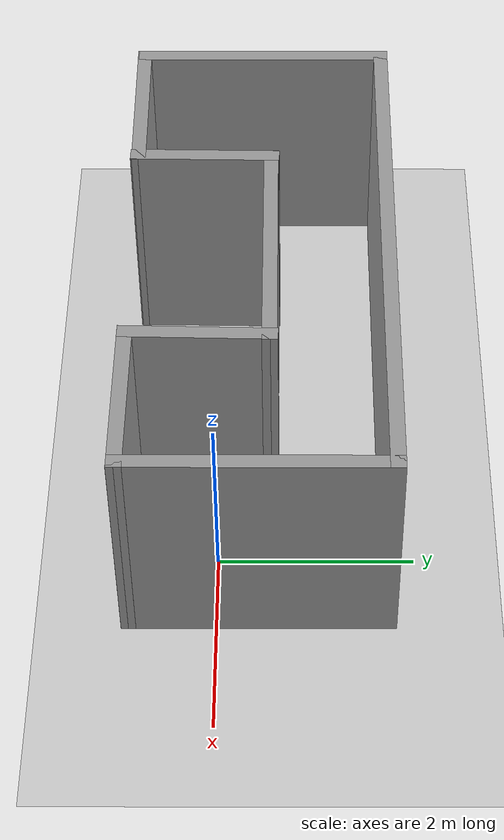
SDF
<sdf version="1.6">
 <world name="default">
  <light name="sun" type="directional">
   <pose>0 0 10 0 -0 0</pose>
   <diffuse>0.8 0.8 0.8 1</diffuse>
   <specular>0.2 0.2 0.2 1</specular>
   <attenuation>
    <range>1000</range>
    <constant>0.9</constant>
    <linear>0.01</linear>
    <quadratic>0.001</quadratic>
   </attenuation>
   <direction>-0.5 0.1 -0.9</direction>
  </light>
  <model name="ground_plane">
   <static>1</static>
   <link name="link">
    <collision name="collision">
     <geometry><plane><normal>0 0 1</normal><size>100 100</size></plane></geometry>
     <surface>
      <contact><collide_bitmask>65535</collide_bitmask></contact>
      <friction><ode><mu>100</mu><mu2>50</mu2></ode></friction>
     </surface>
    </collision>
    <visual name="visual">
     <cast_shadows>0</cast_shadows>
     <geometry><plane><normal>0 0 1</normal><size>100 100</size></plane></geometry>
     <material>
      <script><uri>file://media/materials/scripts/gazebo.material</uri><name>Gazebo/Grey</name></script>
     </material>
    </visual>
   </link>
  </model>
  <gravity>0 0 -9.8</gravity>
  <magnetic_field>6e-06 2.3e-05 -4.2e-05</magnetic_field>
  <atmosphere type="adiabatic"/>
  <physics name="default_physics" default="0" type="ode">
   <max_step_size>0.001</max_step_size>
   <real_time_factor>1</real_time_factor>
   <real_time_update_rate>1000</real_time_update_rate>
  </physics>
  <scene><ambient>0.4 0.4 0.4 1</ambient><background>0.7 0.7 0.7 1</background><shadows>1</shadows></scene>
  <audio><device>default</device></audio>
  <spherical_coordinates>
   <surface_model>EARTH_WGS84</surface_model>
   <latitude_deg>0</latitude_deg>
   <longitude_deg>0</longitude_deg>
   <elevation>0</elevation>
   <heading_deg>0</heading_deg>
  </spherical_coordinates>
  <model name="irex_sim1">
   <pose>-2.16054 0.424159 0 0 -0 0</pose>
   <link name="Wall_1">
    <collision name="Wall_1_Collision">
     <geometry><box><size>6 0.15 2.5</size></box></geometry>
     <pose>0 0 1.25 0 -0 0</pose>
    </collision>
    <visual name="Wall_1_Visual">
     <pose>0 0 1.25 0 -0 0</pose>
     <geometry><box><size>6 0.15 2.5</size></box></geometry>
     <material>
      <script><uri>file://media/materials/scripts/gazebo.material</uri><name>Gazebo/Grey</name></script>
      <ambient>1 1 1 1</ambient>
     </material>
     <meta><layer>0</layer></meta>
    </visual>
    <pose>2.1e-05 1.30023 0 0 -0 0</pose>
   </link>
   <link name="Wall_10">
    <collision name="Wall_10_Collision">
     <geometry><box><size>1.78003 0.15 2.5</size></box></geometry>
     <pose>0 0 1.25 0 -0 0</pose>
    </collision>
    <visual name="Wall_10_Visual">
     <pose>0 0 1.25 0 -0 0</pose>
     <geometry><box><size>1.78003 0.15 2.5</size></box></geometry>
     <material>
      <script><uri>file://media/materials/scripts/gazebo.material</uri><name>Gazebo/Grey</name></script>
      <ambient>1 1 1 1</ambient>
     </material>
     <meta><layer>0</layer></meta>
    </visual>
    <pose>2.11002 -1.29477 0 0 -0 -0.006135</pose>
   </link>
   <link name="Wall_2">
    <collision name="Wall_2_Collision">
     <geometry><box><size>2.75 0.15 2.5</size></box></geometry>
     <pose>0 0 1.25 0 -0 0</pose>
    </collision>
    <visual name="Wall_2_Visual">
     <pose>0 0 1.25 0 -0 0</pose>
     <geometry><box><size>2.75 0.15 2.5</size></box></geometry>
     <material>
      <script><uri>file://media/materials/scripts/gazebo.material</uri><name>Gazebo/Grey</name></script>
      <ambient>1 1 1 1</ambient>
     </material>
     <meta><layer>0</layer></meta>
    </visual>
    <pose>2.92502 0.000229 0 0 -0 -1.5708</pose>
   </link>
   <link name="Wall_4">
    <collision name="Wall_4_Collision">
     <geometry><box><size>2.73 0.15 2.5</size></box></geometry>
     <pose>0 0 1.25 0 -0 0</pose>
    </collision>
    <visual name="Wall_4_Visual">
     <pose>0 0 1.25 0 -0 0</pose>
     <geometry><box><size>2.73 0.15 2.5</size></box></geometry>
     <material>
      <script><uri>file://media/materials/scripts/gazebo.material</uri><name>Gazebo/Grey</name></script>
      <ambient>1 1 1 1</ambient>
     </material>
     <meta><layer>0</layer></meta>
    </visual>
    <pose>-2.92498 0.010229 0 0 -0 -1.5708</pose>
   </link>
   <link name="Wall_6">
    <collision name="Wall_6_Collision">
     <geometry><box><size>1.79012 0.15 2.5</size></box></geometry>
     <pose>0 0 1.25 0 -0 0</pose>
    </collision>
    <visual name="Wall_6_Visual">
     <pose>0 0 1.25 0 -0 0</pose>
     <geometry><box><size>1.79012 0.15 2.5</size></box></geometry>
     <material>
      <script><uri>file://media/materials/scripts/gazebo.material</uri><name>Gazebo/Grey</name></script>
      <ambient>1 1 1 1</ambient>
     </material>
     <meta><layer>0</layer></meta>
    </visual>
    <pose>-2.10498 -1.28477 0 0 -0 0.006097</pose>
   </link>
   <link name="Wall_7">
    <collision name="Wall_7_Collision">
     <geometry><box><size>1.56014 0.15 2.5</size></box></geometry>
     <pose>0 0 1.25 0 -0 0</pose>
    </collision>
    <visual name="Wall_7_Visual">
     <pose>0 0 1.25 0 -0 0</pose>
     <geometry><box><size>1.56014 0.15 2.5</size></box></geometry>
     <material>
      <script><uri>file://media/materials/scripts/gazebo.material</uri><name>Gazebo/Grey</name></script>
      <ambient>1 1 1 1</ambient>
     </material>
     <meta><layer>0</layer></meta>
    </visual>
    <pose>-1.27498 -0.584771 0 0 -0 1.55661</pose>
   </link>
   <link name="Wall_8">
    <collision name="Wall_8_Collision">
     <geometry><box><size>2.73 0.15 2.5</size></box></geometry>
     <pose>0 0 1.25 0 -0 0</pose>
    </collision>
    <visual name="Wall_8_Visual">
     <pose>0 0 1.25 0 -0 0</pose>
     <geometry><box><size>2.73 0.15 2.5</size></box></geometry>
     <material>
      <script><uri>file://media/materials/scripts/gazebo.material</uri><name>Gazebo/Grey</name></script>
      <ambient>1 1 1 1</ambient>
     </material>
     <meta><layer>0</layer></meta>
    </visual>
    <pose>0.025021 0.110229 0 0 -0 0</pose>
   </link>
   <link name="Wall_9">
    <collision name="Wall_9_Collision">
     <geometry><box><size>1.56032 0.15 2.5</size></box></geometry>
     <pose>0 0 1.25 0 -0 0</pose>
    </collision>
    <visual name="Wall_9_Visual">
     <pose>0 0 1.25 0 -0 0</pose>
     <geometry><box><size>1.56032 0.15 2.5</size></box></geometry>
     <material>
      <script><uri>file://media/materials/scripts/gazebo.material</uri><name>Gazebo/Grey</name></script>
      <ambient>1 1 1 1</ambient>
     </material>
     <meta><layer>0</layer></meta>
    </visual>
    <pose>1.30002 -0.584771 0 0 -0 -1.59207</pose>
   </link>
   <static>1</static>
  </model>
 </world>
</sdf>
